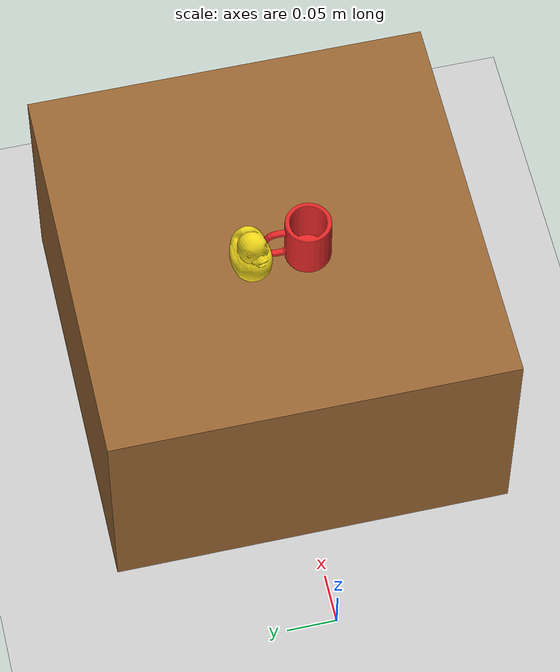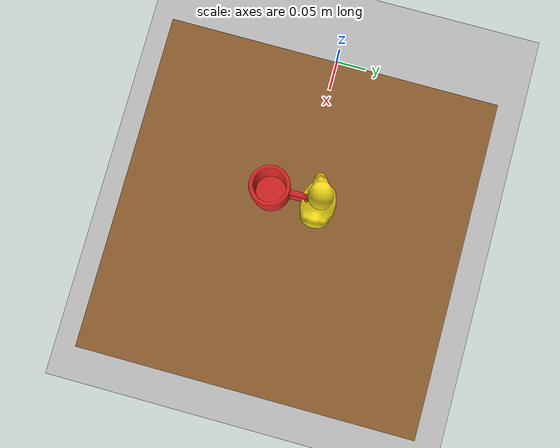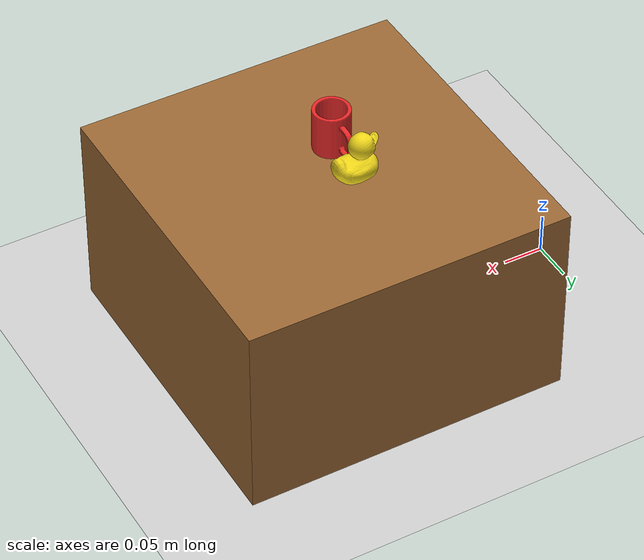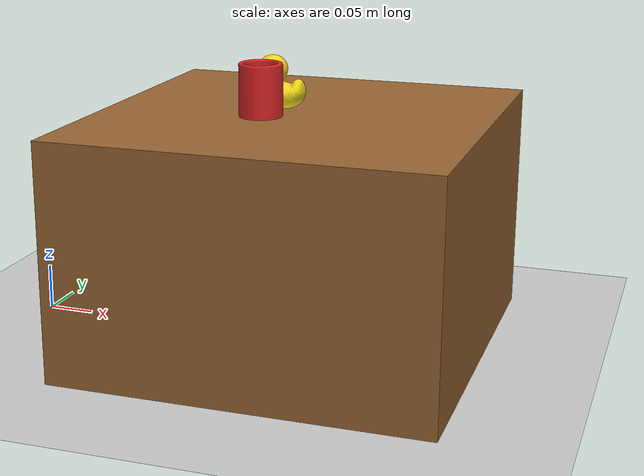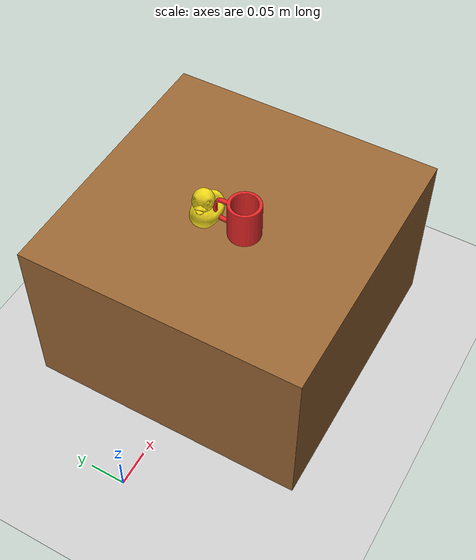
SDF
<?xml version="1.0" ?>
<sdf version="1.9">
  <world name="pick_and_place_world">

    <!-- Physics -->
    <physics name="default_physics" type="ode">
      <max_step_size>0.001</max_step_size>
      <real_time_factor>1.0</real_time_factor>
      <real_time_update_rate>1000</real_time_update_rate>
    </physics>

    <!-- Plugins -->
    <plugin filename="gz-sim-physics-system" name="gz::sim::systems::Physics"/>
    <plugin filename="gz-sim-scene-broadcaster-system" name="gz::sim::systems::SceneBroadcaster"/>
    <plugin filename="gz-sim-user-commands-system" name="gz::sim::systems::UserCommands"/>
    <plugin filename="gz-sim-sensors-system" name="gz::sim::systems::Sensors">
      <render_engine>ogre2</render_engine>
    </plugin>

    <!-- Lighting -->
    <light type="directional" name="sun">
      <cast_shadows>true</cast_shadows>
      <pose>0 0 10 0 0 0</pose>
      <diffuse>0.9 0.9 0.9 1</diffuse>
      <specular>0.3 0.3 0.3 1</specular>
      <direction>-0.5 0.1 -0.9</direction>
    </light>

    <light type="point" name="fill_light">
      <pose>0 -2 3 0 0 0</pose>
      <diffuse>0.4 0.4 0.4 1</diffuse>
      <specular>0.1 0.1 0.1 1</specular>
      <attenuation>
        <range>20</range>
      </attenuation>
    </light>

    <!-- Ground Plane -->
    <model name="ground_plane">
      <static>true</static>
      <link name="link">
        <collision name="collision">
          <geometry>
            <plane>
              <normal>0 0 1</normal>
              <size>5 5</size>
            </plane>
          </geometry>
        </collision>
        <visual name="visual">
          <geometry>
            <plane>
              <normal>0 0 1</normal>
              <size>5 5</size>
            </plane>
          </geometry>
          <material>
            <ambient>0.8 0.8 0.8 1</ambient>
            <diffuse>0.8 0.8 0.8 1</diffuse>
          </material>
        </visual>
      </link>
    </model>

    <!-- Table -->
    <model name="table">
      <static>true</static>
      <pose>0.30 0 0.125 0 0 0</pose>
      <link name="table_link">
        <collision name="collision">
          <geometry>
            <box>
              <size>0.40 0.40 0.25</size>
            </box>
          </geometry>
        </collision>
        <visual name="visual">
          <geometry>
            <box>
              <size>0.40 0.40 0.25</size>
            </box>
          </geometry>
          <material>
            <ambient>0.6 0.4 0.2 1</ambient>
            <diffuse>0.6 0.4 0.2 1</diffuse>
          </material>
        </visual>
      </link>
    </model>

    <!-- Object 1: Coffee Mug (Clutter case: touching rubber duck) -->
    <model name="coffee_mug">
      <pose>0.27 -0.02 0.251 0 0 0</pose>
      <link name="link">
        <inertial>
          <mass>0.045</mass>
          <inertia>
            <ixx>0.00002</ixx>
            <iyy>0.00002</iyy>
            <izz>0.00002</izz>
          </inertia>
        </inertial>
        <collision name="body_col">
          <pose>0 -0.005 0.0275 0 0 0</pose>
          <geometry>
            <cylinder>
              <radius>0.0225</radius>
              <length>0.055</length>
            </cylinder>
          </geometry>
          <surface>
            <friction>
              <ode>
                <mu>50.0</mu>
                <mu2>50.0</mu2>
              </ode>
            </friction>
          </surface>
        </collision>
        <visual name="visual">
          <geometry>
            <mesh>
              <uri>file:///home/tienle/.gemini/antigravity/scratch/robot_3dof_ws/src/robot_3dof/meshes/objects/mug.obj</uri>
            </mesh>
          </geometry>
          <material>
            <ambient>0.9 0.15 0.15 1</ambient>
            <diffuse>0.9 0.15 0.15 1</diffuse>
          </material>
        </visual>
      </link>
    </model>

    <!-- Object 2: Rubber Duck (Clutter case: touching mug) -->
    <model name="rubber_duck">
      <pose>0.27 0.025 0.251 0 0 0</pose>
      <link name="link">
        <inertial>
          <mass>0.035</mass>
          <inertia>
            <ixx>0.000015</ixx>
            <iyy>0.000015</iyy>
            <izz>0.000015</izz>
          </inertia>
        </inertial>
        <collision name="body_col">
          <pose>0 0 0.027 0 0 0</pose>
          <geometry>
            <cylinder>
              <radius>0.020</radius>
              <length>0.054</length>
            </cylinder>
          </geometry>
          <surface>
            <friction>
              <ode>
                <mu>50.0</mu>
                <mu2>50.0</mu2>
              </ode>
            </friction>
          </surface>
        </collision>
        <visual name="visual">
          <geometry>
            <mesh>
              <uri>file:///home/tienle/.gemini/antigravity/scratch/robot_3dof_ws/src/robot_3dof/meshes/objects/duck.obj</uri>
            </mesh>
          </geometry>
          <material>
            <ambient>0.95 0.85 0.1 1</ambient>
            <diffuse>0.95 0.85 0.1 1</diffuse>
          </material>
        </visual>
      </link>
    </model>

  </world>
</sdf>
